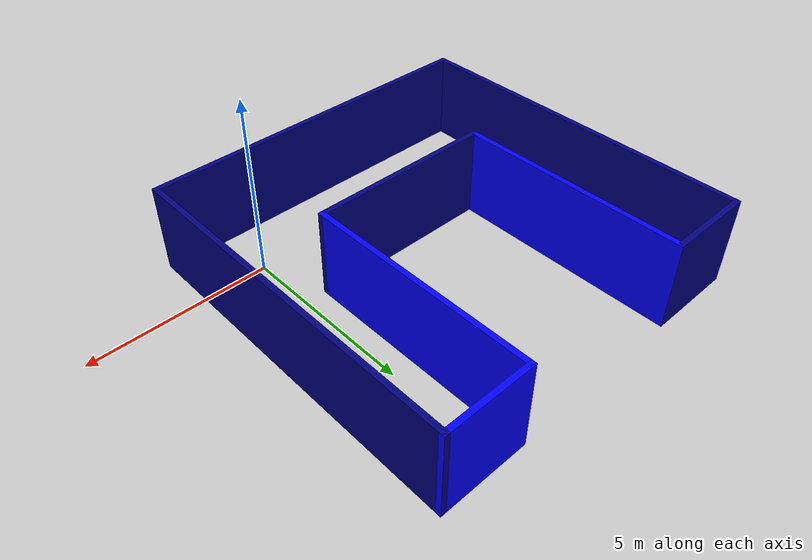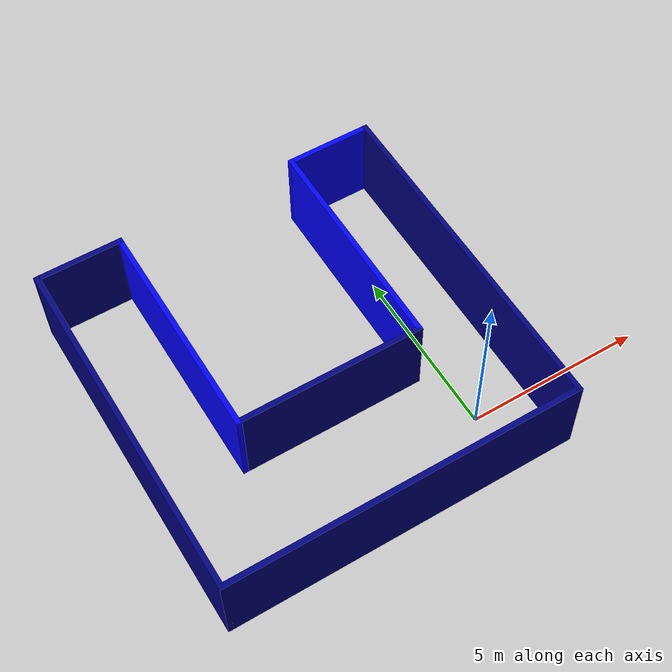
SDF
<?xml version='1.0'?>
<sdf version='1.7'>
  <model name='building'>
    <pose>-3.24544 3.26323 0 0 -0 0</pose>
    <link name='Wall_18'>
      <collision name='Wall_18_Collision'>
        <geometry>
          <box>
            <size>10 0.15 2.5</size>
          </box>
        </geometry>
        <pose>0 0 1.25 0 -0 0</pose>
      </collision>
      <visual name='Wall_18_Visual'>
        <pose>0 0 1.25 0 -0 0</pose>
        <geometry>
          <box>
            <size>10 0.15 2.5</size>
          </box>
        </geometry>
        <material>
          <script>
            <uri>file://media/materials/scripts/gazebo.material</uri>
            <name>Gazebo/Grey</name>
          </script>
          <ambient>0 0 0.498039 1</ambient>
        </material>
        <meta>
          <layer>0</layer>
        </meta>
      </visual>
      <pose>-4.925 -0 0 0 -0 -1.5708</pose>
    </link>
    <link name='Wall_20'>
      <collision name='Wall_20_Collision'>
        <geometry>
          <box>
            <size>2.5 0.15 2.5</size>
          </box>
        </geometry>
        <pose>0 0 1.25 0 -0 0</pose>
      </collision>
      <visual name='Wall_20_Visual'>
        <pose>0 0 1.25 0 -0 0</pose>
        <geometry>
          <box>
            <size>2.5 0.15 2.5</size>
          </box>
        </geometry>
        <material>
          <script>
            <uri>file://media/materials/scripts/gazebo.material</uri>
            <name>Gazebo/Grey</name>
          </script>
          <ambient>0 0 0.498039 1</ambient>
        </material>
        <meta>
          <layer>0</layer>
        </meta>
      </visual>
      <pose>-3.75 4.925 0 0 -0 0</pose>
    </link>
    <link name='Wall_21'>
      <collision name='Wall_21_Collision'>
        <geometry>
          <box>
            <size>6.5 0.15 2.5</size>
          </box>
        </geometry>
        <pose>0 0 1.25 0 -0 0</pose>
      </collision>
      <visual name='Wall_21_Visual'>
        <pose>0 0 1.25 0 -0 0</pose>
        <geometry>
          <box>
            <size>6.5 0.15 2.5</size>
          </box>
        </geometry>
        <material>
          <script>
            <uri>file://media/materials/scripts/gazebo.material</uri>
            <name>Gazebo/Grey</name>
          </script>
          <ambient>0 0 1 1</ambient>
        </material>
        <meta>
          <layer>0</layer>
        </meta>
      </visual>
      <pose>-2.575 1.75 0 0 -0 -1.5708</pose>
    </link>
    <link name='Wall_23'>
      <collision name='Wall_23_Collision'>
        <geometry>
          <box>
            <size>10 0.15 2.5</size>
          </box>
        </geometry>
        <pose>0 0 1.25 0 -0 0</pose>
      </collision>
      <visual name='Wall_23_Visual'>
        <pose>0 0 1.25 0 -0 0</pose>
        <geometry>
          <box>
            <size>10 0.15 2.5</size>
          </box>
        </geometry>
        <material>
          <script>
            <uri>file://media/materials/scripts/gazebo.material</uri>
            <name>Gazebo/Grey</name>
          </script>
          <ambient>0 0 0.498039 1</ambient>
        </material>
        <meta>
          <layer>0</layer>
        </meta>
      </visual>
      <pose>0 -4.925 0 0 -0 0</pose>
    </link>
    <link name='Wall_24'>
      <collision name='Wall_24_Collision'>
        <geometry>
          <box>
            <size>10 0.15 2.5</size>
          </box>
        </geometry>
        <pose>0 0 1.25 0 -0 0</pose>
      </collision>
      <visual name='Wall_24_Visual'>
        <pose>0 0 1.25 0 -0 0</pose>
        <geometry>
          <box>
            <size>10 0.15 2.5</size>
          </box>
        </geometry>
        <material>
          <script>
            <uri>file://media/materials/scripts/gazebo.material</uri>
            <name>Gazebo/Grey</name>
          </script>
          <ambient>0 0 0.498039 1</ambient>
        </material>
        <meta>
          <layer>0</layer>
        </meta>
      </visual>
      <pose>4.925 -0 0 0 -0 1.5708</pose>
    </link>
    <link name='Wall_25'>
      <collision name='Wall_25_Collision'>
        <geometry>
          <box>
            <size>2.5 0.15 2.5</size>
          </box>
        </geometry>
        <pose>0 0 1.25 0 -0 0</pose>
      </collision>
      <visual name='Wall_25_Visual'>
        <pose>0 0 1.25 0 -0 0</pose>
        <geometry>
          <box>
            <size>2.5 0.15 2.5</size>
          </box>
        </geometry>
        <material>
          <script>
            <uri>file://media/materials/scripts/gazebo.material</uri>
            <name>Gazebo/Grey</name>
          </script>
          <ambient>0 0 1 1</ambient>
        </material>
        <meta>
          <layer>0</layer>
        </meta>
      </visual>
      <pose>3.75 4.925 0 0 -0 3.14159</pose>
    </link>
    <link name='Wall_26'>
      <collision name='Wall_26_Collision'>
        <geometry>
          <box>
            <size>6.5 0.15 2.5</size>
          </box>
        </geometry>
        <pose>0 0 1.25 0 -0 0</pose>
      </collision>
      <visual name='Wall_26_Visual'>
        <pose>0 0 1.25 0 -0 0</pose>
        <geometry>
          <box>
            <size>6.5 0.15 2.5</size>
          </box>
        </geometry>
        <material>
          <script>
            <uri>file://media/materials/scripts/gazebo.material</uri>
            <name>Gazebo/Grey</name>
          </script>
          <ambient>0 0 1 1</ambient>
        </material>
        <meta>
          <layer>0</layer>
        </meta>
      </visual>
      <pose>2.575 1.75 0 0 -0 -1.5708</pose>
    </link>
    <link name='Wall_27'>
      <collision name='Wall_27_Collision'>
        <geometry>
          <box>
            <size>5.3 0.15 2.5</size>
          </box>
        </geometry>
        <pose>0 0 1.25 0 -0 0</pose>
      </collision>
      <visual name='Wall_27_Visual'>
        <pose>0 0 1.25 0 -0 0</pose>
        <geometry>
          <box>
            <size>5.3 0.15 2.5</size>
          </box>
        </geometry>
        <material>
          <script>
            <uri>file://media/materials/scripts/gazebo.material</uri>
            <name>Gazebo/Grey</name>
          </script>
          <ambient>0 0 0.498039 1</ambient>
        </material>
        <meta>
          <layer>0</layer>
        </meta>
      </visual>
      <pose>0 -1.425 0 0 -0 3.14159</pose>
    </link>
    <static>1</static>
  </model>
</sdf>
